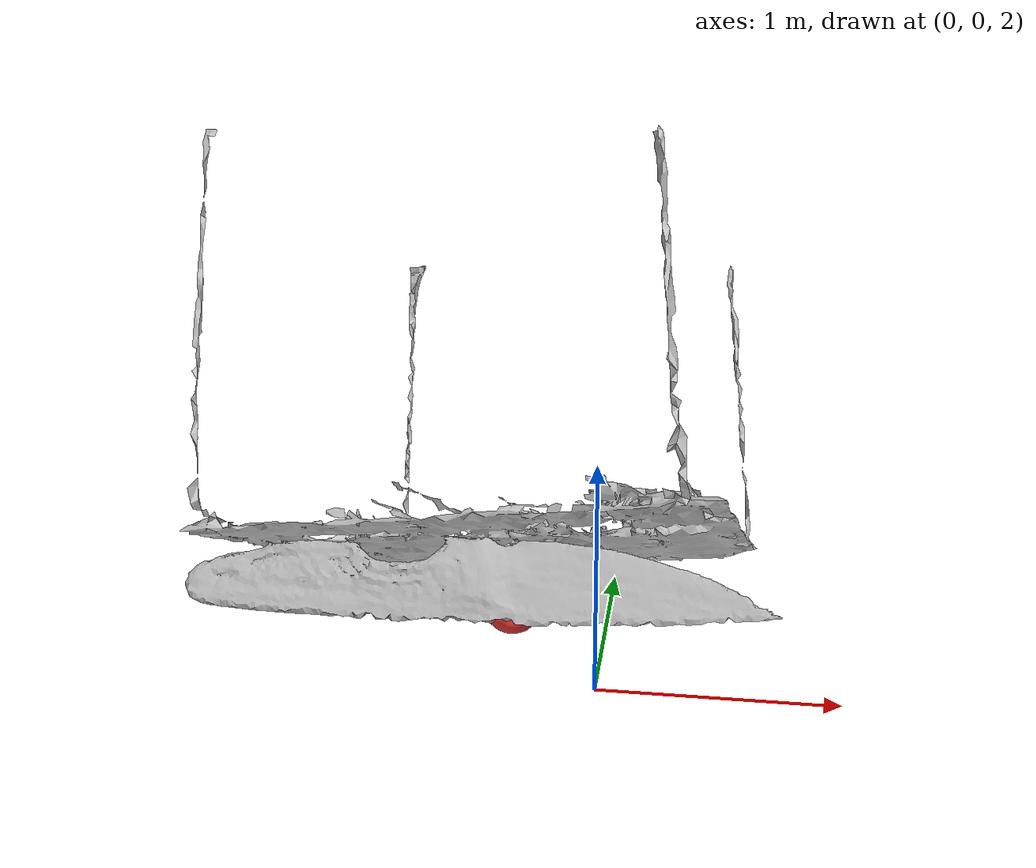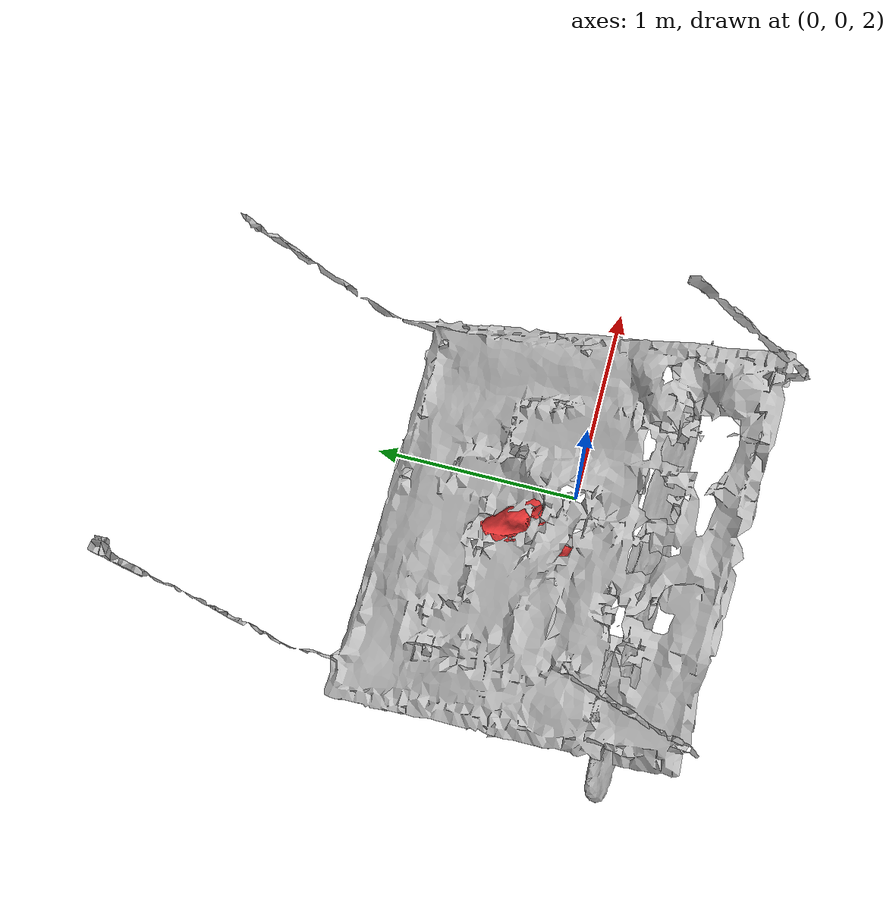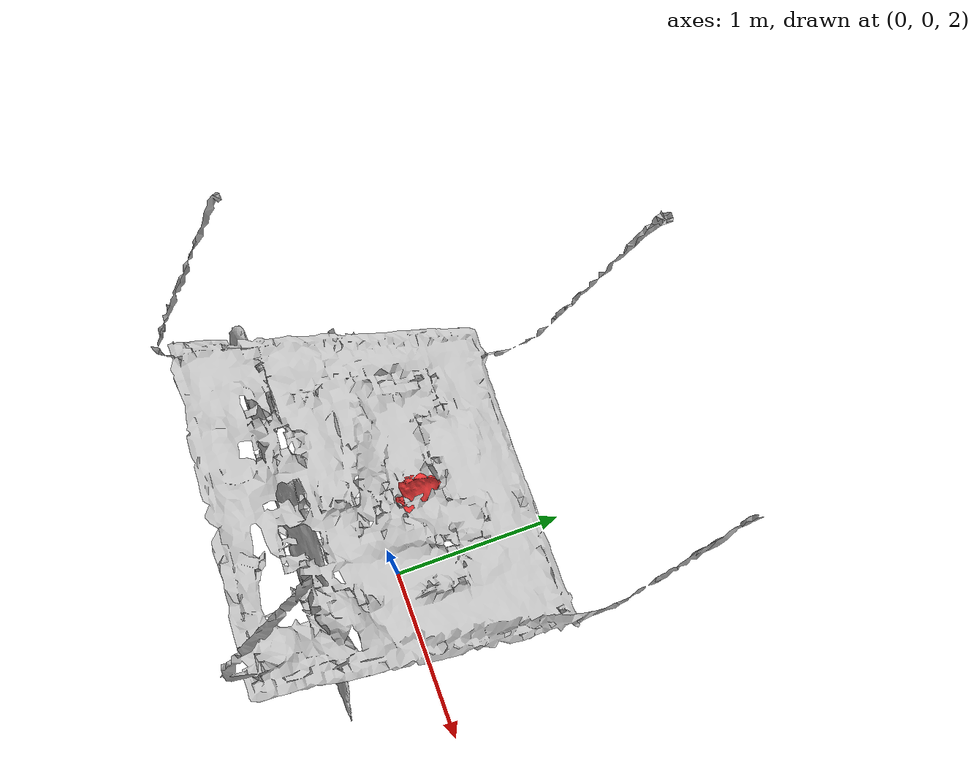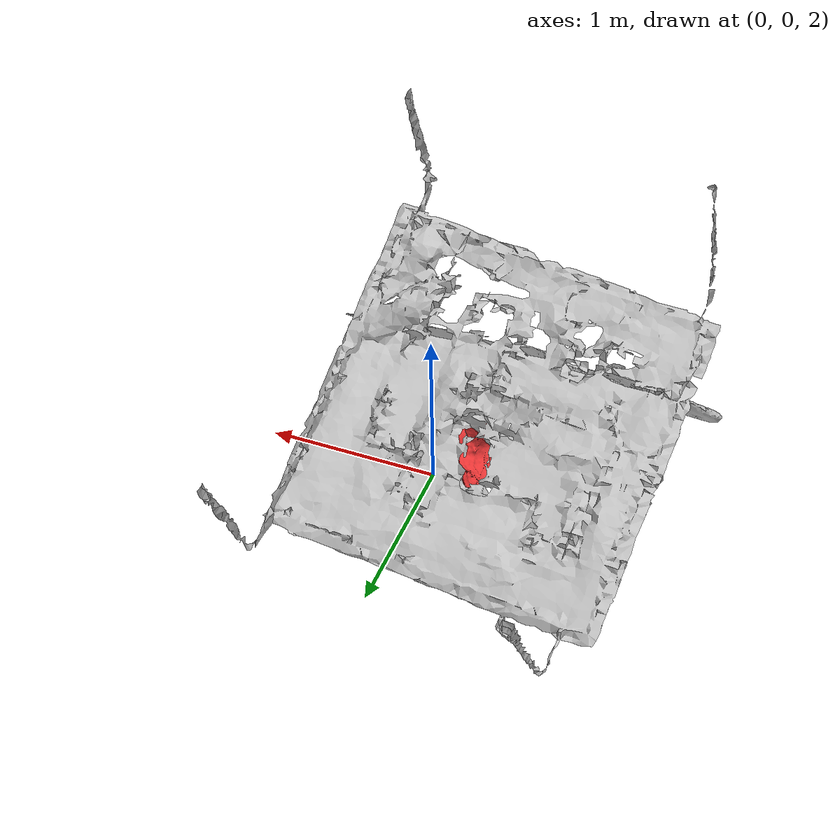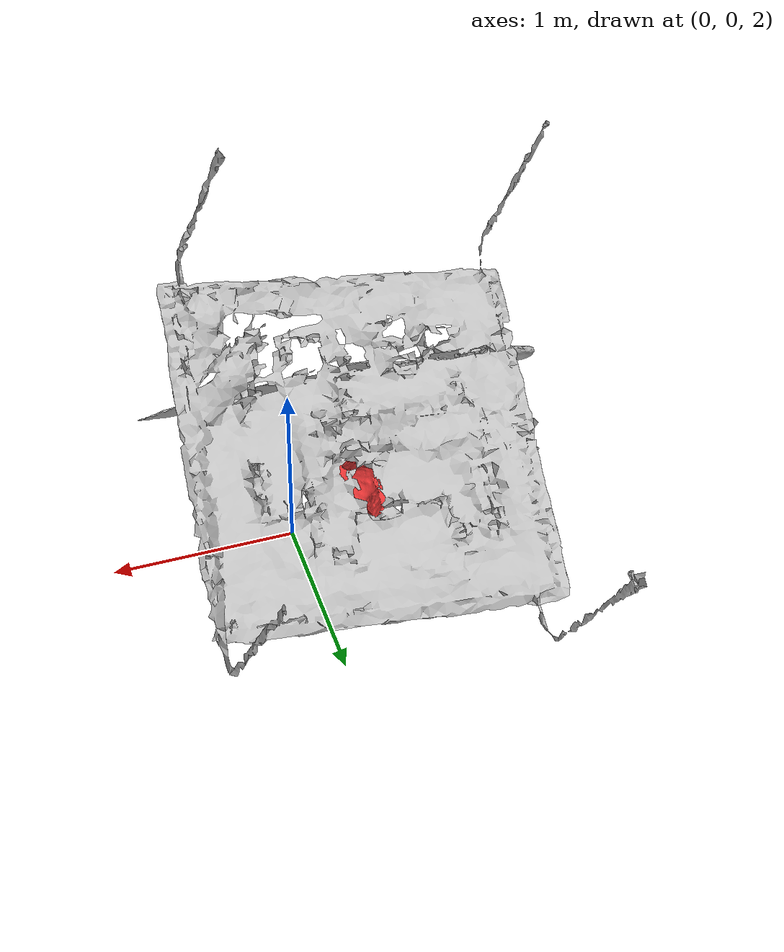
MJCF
<mujoco model="table_knife_strawberry">
  <compiler
      meshdir=""
      angle="radian"
      coordinate="local"
      strippath="false"
      discardvisual="false"
      inertiafromgeom="true" />

  <option gravity="0 0 -9.81"
          integrator="RK4"
          timestep="0.001"
          cone="pyramidal"
          impratio="5"
          tolerance="1e-8">
    <flag warmstart="enable"/>
  </option>

  <asset>
    <!-- Replace these with your actual mesh paths -->
    <mesh name="table_mesh"      file="meshes/table.stl"/>
    <mesh name="knife_mesh"      file="meshes/knife.stl"/>
    <mesh name="strawberry_mesh" file="meshes/strawberry.stl"/>

    <material name="mat_table"      rgba="0.75 0.75 0.75 1"/>
    <material name="mat_knife"      rgba="0.70 0.70 0.70 1"/>
    <material name="mat_strawberry" rgba="0.90 0.20 0.20 1"/>
  </asset>

  <default>
    <!-- Default contact settings (copied from your file) -->
    <geom friction="2.5 1 1"
          solref="0.002 1"
          solimp="0.95 0.99 0.001"
          condim="4"
          contype="1"
          conaffinity="1"/>
  </default>

  <worldbody>

    <!-- TABLE (typically static)  -->
    <body name="table"
          pos="0 0 0"
          quat="1 0 0 0">
      <!-- Visual mesh: no collision -->
      <geom name="table_visual"
            type="mesh"
            mesh="table_mesh"
            material="mat_table"
            contype="0"
            conaffinity="0"
            group="1"/>

      <!-- Collision proxy: use a simple box (edit size/pos to match your table) -->
      <geom name="table_collision"
            type="box"
            pos="0 0 0.0"
            quat="1 0 0 0"
            size="0.5 0.5 0.05"
            condim="3"
            rgba="1 0 0 0"/>
    </body>

    <!-- KNIFE (movable by default)-->
    <body name="knife"
          pos="0 0 0"
          quat="1 0 0 0">
      <!-- If your knife is manipulated, keep it free. If it is attached to a robot, remove this free joint. -->
      <joint name="knife_free" type="free" damping="0.5" armature="0.001"/>

      <!-- Rough inertial; update with your real knife mass/inertia if known -->
      <inertial pos="0 0 0" mass="0.10" diaginertia="0.0002 0.0002 0.0002"/>

      <!-- Visual mesh: no collision -->
      <geom name="knife_visual"
            type="mesh"
            mesh="knife_mesh"
            material="mat_knife"
            contype="0"
            conaffinity="0"
            group="1"/>

      <!-- Collision proxies: use 1–2 thin boxes (fast + stable). Edit to match your knife. -->
      <geom name="knife_collision_handle"
            type="box"
            pos="-0.08 0 0"
            quat="1 0 0 0"
            size="0.06 0.012 0.012"
            condim="3"
            rgba="1 0 0 0"/>

      <geom name="knife_collision_blade"
            type="box"
            pos="0.08 0 0"
            quat="1 0 0 0"
            size="0.10 0.008 0.002"
            condim="3"
            rgba="1 0 0 0"/>
    </body>

    <!-- STRAWBERRY (movable)      -->
    <body name="strawberry"
          pos="0 0 0"
          quat="1 0 0 0">
      <joint name="strawberry_free" type="free" damping="0.5" armature="0.001"/>

      <!-- Rough inertial; update if you know mass/inertia -->
      <inertial pos="0 0 0" mass="0.03" diaginertia="0.00008 0.00008 0.00008"/>

      <!-- Visual mesh: no collision -->
      <geom name="strawberry_visual"
            type="mesh"
            mesh="strawberry_mesh"
            material="mat_strawberry"
            contype="0"
            conaffinity="0"
            group="1"/>

      <!-- Collision: simplest is a sphere/ellipsoid proxy (stable).
           If you want mesh collision, change type="mesh" mesh="strawberry_mesh". -->
      <geom name="strawberry_collision"
            type="sphere"
            pos="0 0 0"
            size="0.03"
            condim="3"
            rgba="1 0 0 0"/>
    </body>

  </worldbody>
</mujoco>
